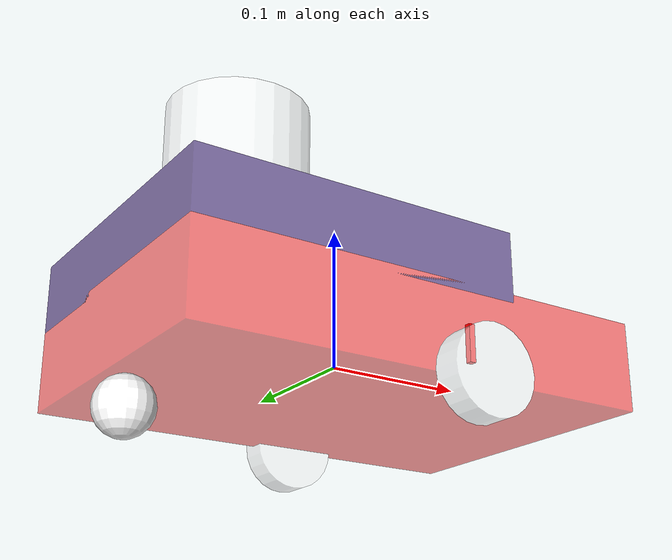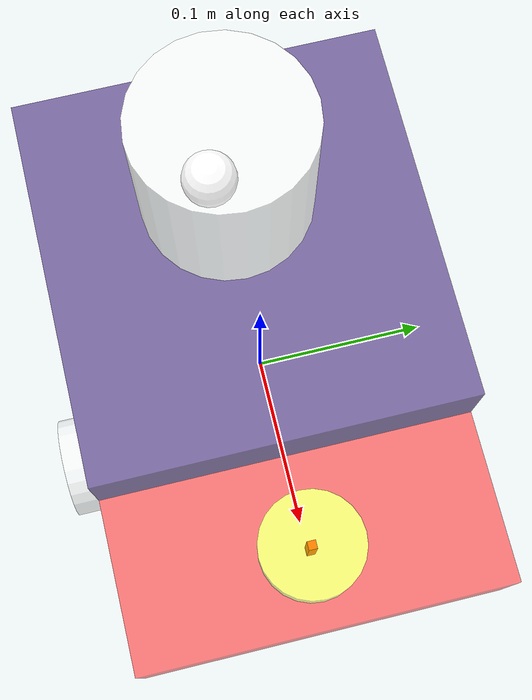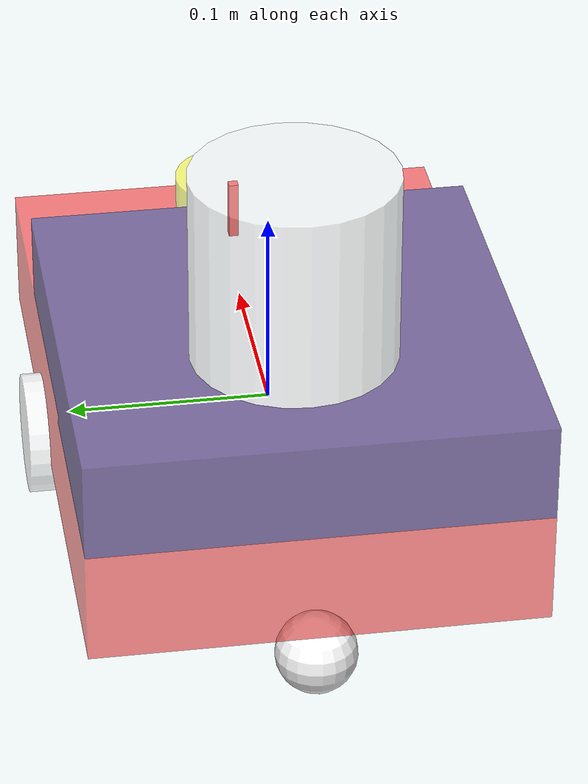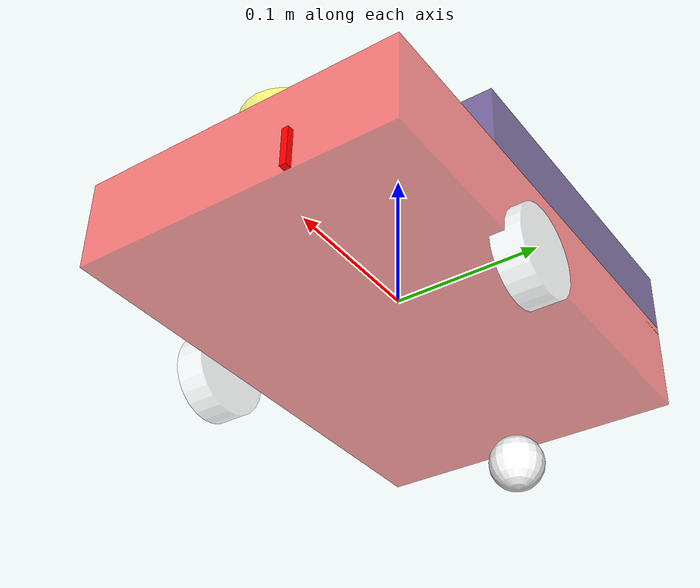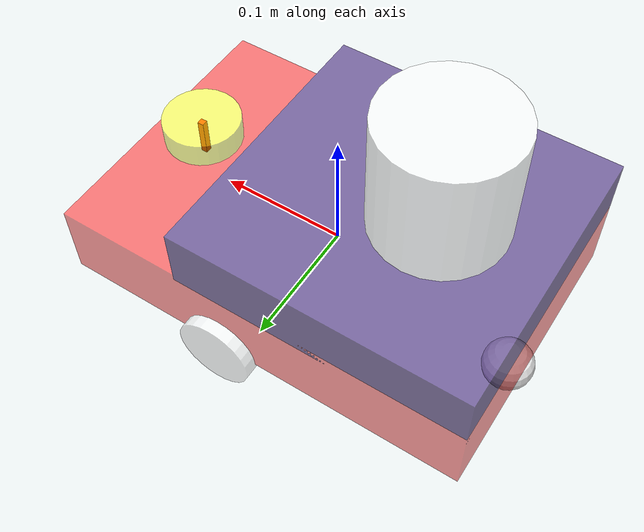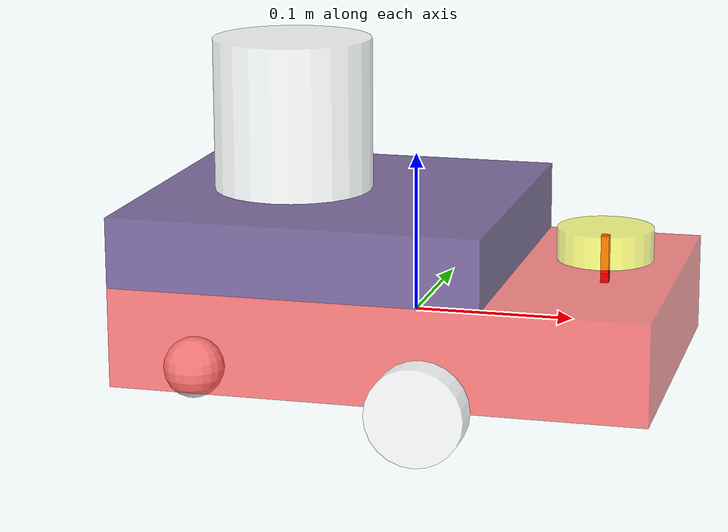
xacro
<?xml version="1.0"?>
<robot xmlns:xacro="http://www.ros.org/wiki/xacro" name="first_robot">

    <xacro:property name="scale" value="1.0" />

    <!-- Base Footprint -->

    <!-- Base Link -->
    <link name="base_link">
        <visual>
            <origin xyz="0.0 0.0 0.0" rpy="0.0 0.0 0.0"/>
            <geometry>
                <box size="${0.33*scale} ${0.22*scale} ${0.062*scale}"/>
            </geometry>
            <material name="red">
                <color rgba="1.0 0.0 0.0 0.5"/>
            </material>
        </visual>
    </link>

    <!-- SC Base Link -->
    <link name="sc_base_link">
        <visual>
            <origin xyz="0.0 0.0 0.0" rpy="0.0 0.0 0.0"/>
            <geometry>
                <box size="0.23 0.22 0.049"/>
            </geometry>
            <material name="blue">
                <color rgba="0.3 0.2 0.5 0.7"/>
            </material>
        </visual>
    </link>

    <!-- HP Link (Cylinder) -->
    <link name="hp_link">
        <visual>
            <origin xyz="0.0 0.0 0.0" rpy="0.0 0.0 0.0"/>
            <geometry>
                <cylinder radius="${0.05*scale}" length="${0.1*scale}"/>
            </geometry>
            <material name="white">
                <color rgba="1.0 1.0 1.0 0.5"/>
            </material>
        </visual>
    </link>

    <!-- Laser Support Link -->
    <link name="lase_support_link">
        <visual>
            <origin xyz="0.0 0.0 0.0" rpy="0.0 0.0 0.0"/>
            <geometry>
                <box size="${0.005*scale} ${0.005*scale} ${0.03*scale}"/>
            </geometry>
            <material name="red">
                <color rgba="1.0 0.0 0.0 1.0"/>
            </material>
        </visual>
    </link>

    <!-- Laser Link -->
    <link name="laser">
        <visual>
            <origin xyz="0.0 0.0 0.0" rpy="0.0 0.0 0.0"/>
            <geometry>
                <cylinder radius="${0.03*scale}" length="${0.02*scale}"/>
            </geometry>
            <material name="yallow">
                <color rgba="1.0 1.0 0.0 0.5"/>
            </material>
        </visual>
    </link>

    <!-- Wheels (Left and Right) -->
    <link name="zuo_wheel_link">
        <visual>
            <origin xyz="0.0 0.0 0.0" rpy="-1.57 0.0 0.0"/>
            <geometry>
                <cylinder radius="${0.03*scale}" length="${0.02*scale}"/>
            </geometry>
            <material name="white">
                <color rgba="1.0 1.0 1.0 0.5"/>
            </material>
        </visual>
    </link>

    <link name="you_wheel_link">
        <visual>
            <origin xyz="0.0 0.0 0.0" rpy="-1.57 0.0 0.0"/>
            <geometry>
                <cylinder radius="${0.03*scale}" length="${0.02*scale}"/>
            </geometry>
            <material name="white">
                <color rgba="1.0 1.0 1.0 0.5"/>
            </material>
        </visual>
    </link>

    <!-- Front Caster Wheel -->
    <link name="qian_caster">
        <visual>
            <origin xyz="0.0 0.0 0.0" rpy="0.0 0.0 0.0"/>
            <geometry>
                <sphere radius="${0.02*scale}"/>
            </geometry>
            <material name="white">
                <color rgba="1.0 1.0 1.0 1.0"/>
            </material>
        </visual>
    </link>

    <!-- Joints (????????) -->

    <joint name="caster_link" type="fixed">
        <origin xyz="-0.15 0.0 -0.05" rpy="0.0 0.0 0.0"/>
        <axis xyz="0.0 0.0 0.0"/>
        <parent link="base_link"/>
        <child link="qian_caster"/>
    </joint>

    <joint name="right_wheel_joint" type="continuous">
        <origin xyz="0.03 0.11 -0.03" rpy="0.0 0.0 0.0"/>
        <axis xyz="0.0 1.0 0.0"/>
        <parent link="base_link"/>
        <child link="you_wheel_link"/>
    </joint>

    <joint name="left_wheel_joint" type="continuous">
        <origin xyz="0.03 -0.12 -0.03" rpy="0.0 0.0 0.0"/>
        <axis xyz="0.0 1.0 0.0"/>
        <parent link="base_link"/>
        <child link="zuo_wheel_link"/>
    </joint>

    <joint name="laser_joint" type="fixed">
        <origin xyz="0.0 0.0 ${0.01*scale}" rpy="0.0 0.0 0.0"/>
        <axis xyz="0.0 0.0 0.0"/>
        <parent link="lase_support_link"/>
        <child link="laser"/>
    </joint>

    <joint name="lase_link_joint" type="fixed">
        <origin xyz="0.12 0.0 0.04" rpy="0.0 0.0 0.0"/>
        <axis xyz="0.0 0.0 0.0"/>
        <parent link="base_link"/>
        <child link="lase_support_link"/>
    </joint>

    <joint name="hs_joint" type="fixed">
        <origin xyz="-0.03 0.0 0.07" rpy="0.0 0.0 0.0"/>
        <parent link="sc_base_link"/>
        <child link="hp_link"/>
        <axis xyz="0.0 0.0 0.0"/>
    </joint>

    <joint name="base_joint" type="fixed">
        <parent link="base_link"/>
        <child link="sc_base_link"/>
        <origin xyz="-0.05 0.0 0.05" rpy="0.0 0.0 0.0"/>
        <axis xyz="0 0 0"/>
    </joint>

</robot>
